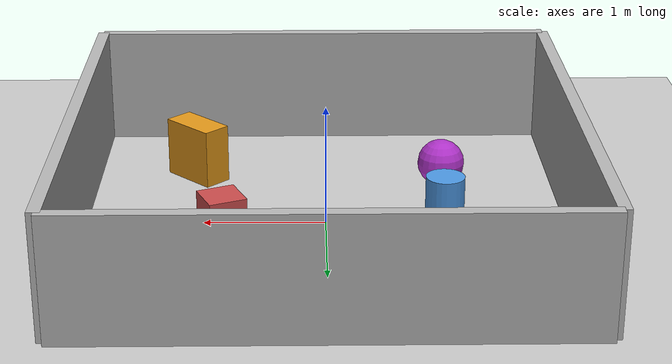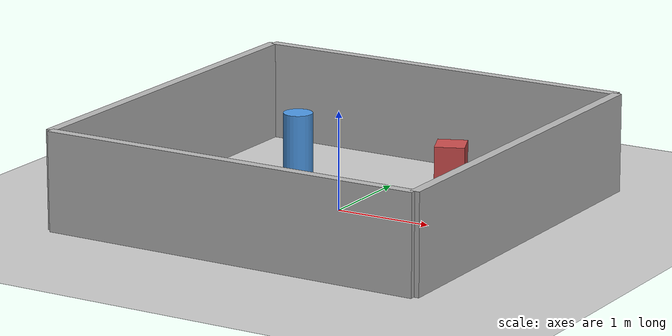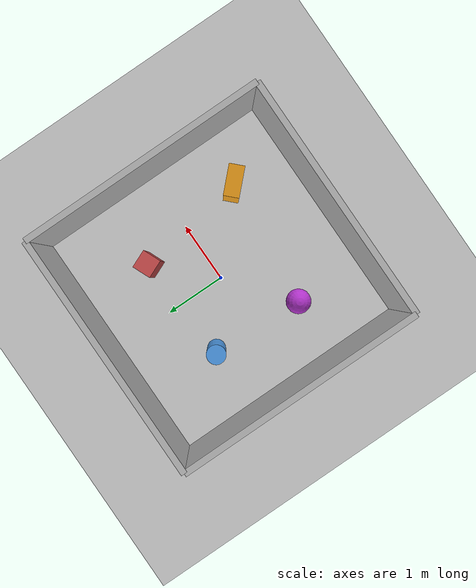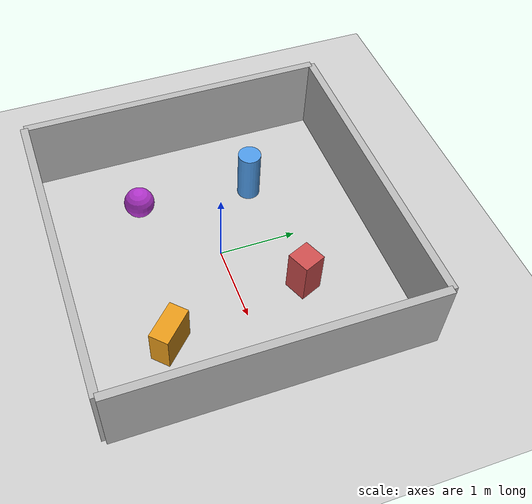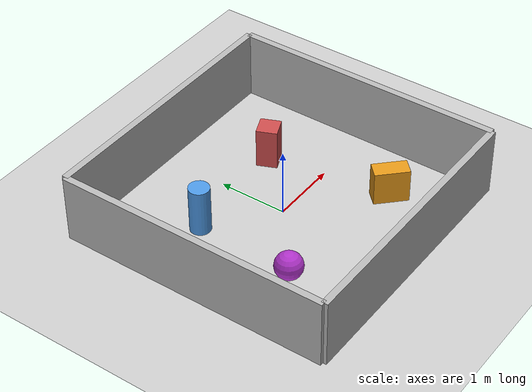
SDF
<?xml version="1.0"?>
<sdf version="1.6">
    <world name="default">

        <!-- 基础物理和场景插件 -->
        <plugin filename="gz-sim-physics-system"
            name="gz::sim::systems::Physics" />
        <plugin filename="gz-sim-user-commands-system"
            name="gz::sim::systems::UserCommands" />
        <plugin filename="gz-sim-scene-broadcaster-system"
            name="gz::sim::systems::SceneBroadcaster" />

        <!-- 传感器插件（激光雷达、摄像头等需要这个）-->
        <plugin filename="gz-sim-sensors-system"
            name="gz::sim::systems::Sensors">
            <render_engine>ogre2</render_engine>
        </plugin>

        <!-- IMU插件 -->
        <plugin filename="gz-sim-imu-system" name="gz::sim::systems::Imu" />

        <!-- 光源 -->
        <light type="directional" name="sun">
            <cast_shadows>true</cast_shadows>
            <pose>0 0 10 0 0 0</pose>
            <diffuse>0.8 0.8 0.8 1</diffuse>
            <specular>0.2 0.2 0.2 1</specular>
            <attenuation>
                <range>1000</range>
                <constant>0.9</constant>
                <linear>0.01</linear>
                <quadratic>0.001</quadratic>
            </attenuation>
            <direction>-0.5 0.1 -0.9</direction>
        </light>

        <!-- 地面 -->
        <model name="ground_plane">
            <static>true</static>
            <link name="link">
                <collision name="collision">
                    <geometry>
                        <plane>
                            <normal>0 0 1</normal>
                        </plane>
                    </geometry>
                </collision>
                <visual name="visual">
                    <geometry>
                        <plane>
                            <normal>0 0 1</normal>
                            <size>100 100</size>
                        </plane>
                    </geometry>
                    <material>
                        <ambient>0.8 0.8 0.8 1</ambient>
                        <diffuse>0.8 0.8 0.8 1</diffuse>
                    </material>
                </visual>
            </link>
        </model>

        <!-- 右墙 x=2 -->
        <model name="wall_1">
            <static>true</static>
            <pose>2 0 0.5 0 0 0</pose>
            <link name="link">
                <collision name="collision">
                    <geometry>
                        <box>
                            <size>0.1 4 1</size>
                        </box>
                    </geometry>
                </collision>
                <visual name="visual">
                    <geometry>
                        <box>
                            <size>0.1 4 1</size>
                        </box>
                    </geometry>
                </visual>
            </link>
        </model>

        <!-- 前墙 y=2 -->
        <model name="wall_2">
            <static>true</static>
            <pose>0 2 0.5 0 0 0</pose>
            <link name="link">
                <collision name="collision">
                    <geometry>
                        <box>
                            <size>4 0.1 1</size>
                        </box>
                    </geometry>
                </collision>
                <visual name="visual">
                    <geometry>
                        <box>
                            <size>4 0.1 1</size>
                        </box>
                    </geometry>
                </visual>
            </link>
        </model>

        <!-- 左墙 x=-2 -->
        <model name="wall_3">
            <static>true</static>
            <pose>-2 0 0.5 0 0 0</pose>
            <link name="link">
                <collision name="collision">
                    <geometry>
                        <box>
                            <size>0.1 4 1</size>
                        </box>
                    </geometry>
                </collision>
                <visual name="visual">
                    <geometry>
                        <box>
                            <size>0.1 4 1</size>
                        </box>
                    </geometry>
                </visual>
            </link>
        </model>

        <!-- 后墙 y=-2 -->
        <model name="wall_4">
            <static>true</static>
            <pose>0 -2 0.5 0 0 0</pose>
            <link name="link">
                <collision name="collision">
                    <geometry>
                        <box>
                            <size>4 0.1 1</size>
                        </box>
                    </geometry>
                </collision>
                <visual name="visual">
                    <geometry>
                        <box>
                            <size>4 0.1 1</size>
                        </box>
                    </geometry>
                </visual>
            </link>
        </model>

        <!-- ========== 障碍物 ========== -->

        <!-- 障碍物1：方形柱（中央偏右前）-->
        <model name="obstacle_box_1">
            <static>true</static>
            <pose>0.8 0.8 0.3 0 0 0.4</pose>
            <link name="link">
                <collision name="collision">
                    <geometry>
                        <box>
                            <size>0.3 0.3 0.6</size>
                        </box>
                    </geometry>
                </collision>
                <visual name="visual">
                    <geometry>
                        <box>
                            <size>0.3 0.3 0.6</size>
                        </box>
                    </geometry>
                    <material>
                        <ambient>0.8 0.3 0.3 1</ambient>
                        <diffuse>0.8 0.3 0.3 1</diffuse>
                    </material>
                </visual>
            </link>
        </model>

        <!-- 障碍物2：圆柱（左前区域）-->
        <model name="obstacle_cylinder_1">
            <static>true</static>
            <pose>-0.9 0.7 0.35 0 0 0</pose>
            <link name="link">
                <collision name="collision">
                    <geometry>
                        <cylinder>
                            <radius>0.15</radius>
                            <length>0.7</length>
                        </cylinder>
                    </geometry>
                </collision>
                <visual name="visual">
                    <geometry>
                        <cylinder>
                            <radius>0.15</radius>
                            <length>0.7</length>
                        </cylinder>
                    </geometry>
                    <material>
                        <ambient>0.3 0.6 0.9 1</ambient>
                        <diffuse>0.3 0.6 0.9 1</diffuse>
                    </material>
                </visual>
            </link>
        </model>

        <!-- 障碍物3：宽矮墙（场地中央横向）-->

        <!-- 障碍物4：方形柱（右后角区域）-->
        <model name="obstacle_box_2">
            <static>true</static>
            <pose>1.1 -1.0 0.25 0 0 0.785</pose>
            <link name="link">
                <collision name="collision">
                    <geometry>
                        <box>
                            <size>0.25 0.5 0.5</size>
                        </box>
                    </geometry>
                </collision>
                <visual name="visual">
                    <geometry>
                        <box>
                            <size>0.25 0.5 0.5</size>
                        </box>
                    </geometry>
                    <material>
                        <ambient>0.9 0.6 0.1 1</ambient>
                        <diffuse>0.9 0.6 0.1 1</diffuse>
                    </material>
                </visual>
            </link>
        </model>

        <!-- 障碍物5：球体（左后区域）-->
        <model name="obstacle_sphere_1">
            <static>true</static>
            <pose>-1.0 -0.8 0.2 0 0 0</pose>
            <link name="link">
                <collision name="collision">
                    <geometry>
                        <sphere>
                            <radius>0.2</radius>
                        </sphere>
                    </geometry>
                </collision>
                <visual name="visual">
                    <geometry>
                        <sphere>
                            <radius>0.2</radius>
                        </sphere>
                    </geometry>
                    <material>
                        <ambient>0.7 0.2 0.8 1</ambient>
                        <diffuse>0.7 0.2 0.8 1</diffuse>
                    </material>
                </visual>
            </link>
        </model>

    </world>
</sdf>
